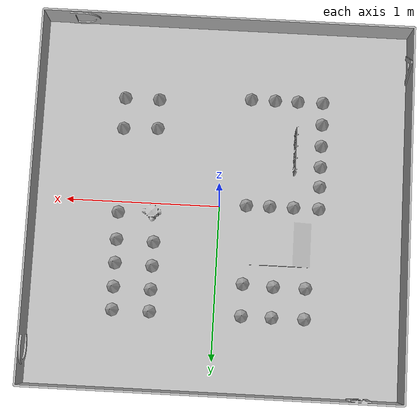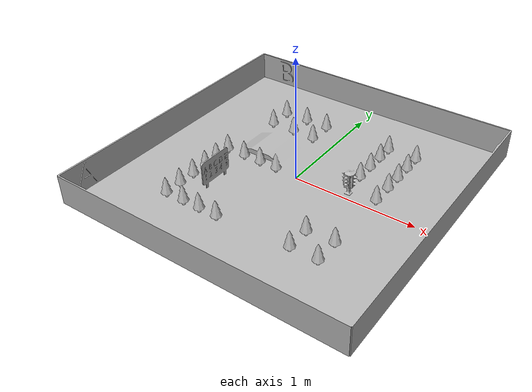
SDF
<?xml version='1.0'?>
<sdf version='1.6'>
  <model name='limo_stage1'>
    <link name='link_1'>
         <visual name='visual'>
        <pose frame=''>0 0 0 0 -0 0</pose>
        <geometry>
          <mesh>
            <uri>model://limo_stage1/meshes/limo_stage.dae</uri>
            <scale>1.2 1.2 1.2</scale>
          </mesh>
        </geometry>
        <cast_shadows>1</cast_shadows>
        <transparency>0</transparency>
      </visual>
      <collision name='collision'>
        <laser_retro>0</laser_retro>
        <max_contacts>10</max_contacts>
        <pose frame=''>0 0 0 0 -0 0</pose>
        <geometry>
          <mesh>
            <uri>model://limo_stage1/meshes/limo_stage.stl</uri>
            <scale>1.2 1.2 1.2</scale>
          </mesh>
        </geometry>
     </collision>
    </link>

    <static>1</static>
    <allow_auto_disable>1</allow_auto_disable>
  </model>
</sdf>
